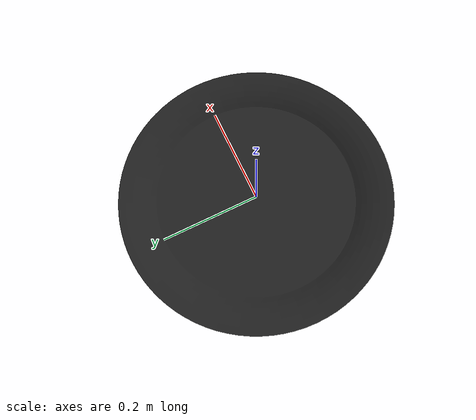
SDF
<?xml version='1.0'?>
<sdf version="1.5">
  <model name="plate"> <!-- Very important to change-->
    <static>false</static>
    <pose>0 0 0 0 0 0</pose> <!-- Translation: X Y Z and Rotation: Roll Pitch Yaw (In Radian)-->
    <link name="body">

      <inertial>
        <mass>0.608</mass>
        <pose>7.16734e-014 1.3232e-013 8.174 0 0 0</pose>
          <inertia>
          <ixx>0.012</ixx>
          <ixy>-6.842e-049</ixy>
          <ixz>0</ixz>
          <iyy>0.012</iyy>
          <iyz>-9.63e-035 </iyz>
          <izz>0.023</izz>
        </inertia>
      </inertial>

       <collision name="collision"> <!-- You can use mesh like below -->
        <geometry>
          <mesh>
             <uri>/home/sorox23/robotic_ws/master_thesis_ws/src/property_based_tester/environment/models/plate/meshes/plate.stl</uri>
              <scale>0.001 0.001 0.001</scale>
          </mesh>
        </geometry>
      </collision>

      <visual name="visual">
        <geometry>
          <mesh>
             <uri>/home/sorox23/robotic_ws/master_thesis_ws/src/property_based_tester/environment/models/plate/meshes/plate.stl</uri>
            <scale>0.001 0.001 0.001</scale>
          </mesh>
        </geometry>

        <material>
          <script>
             <uri>/home/sorox23/robotic_ws/master_thesis_ws/src/property_based_tester/environment/models/plate/materials/scripts</uri>
             <uri>/home/sorox23/robotic_ws/master_thesis_ws/src/property_based_tester/environment/models/plate/materials/textures</uri>
             <name>Gazebo/FlatBlack</name>
          </script>
        </material>
      </visual>
    </link>
  </model>
</sdf>
